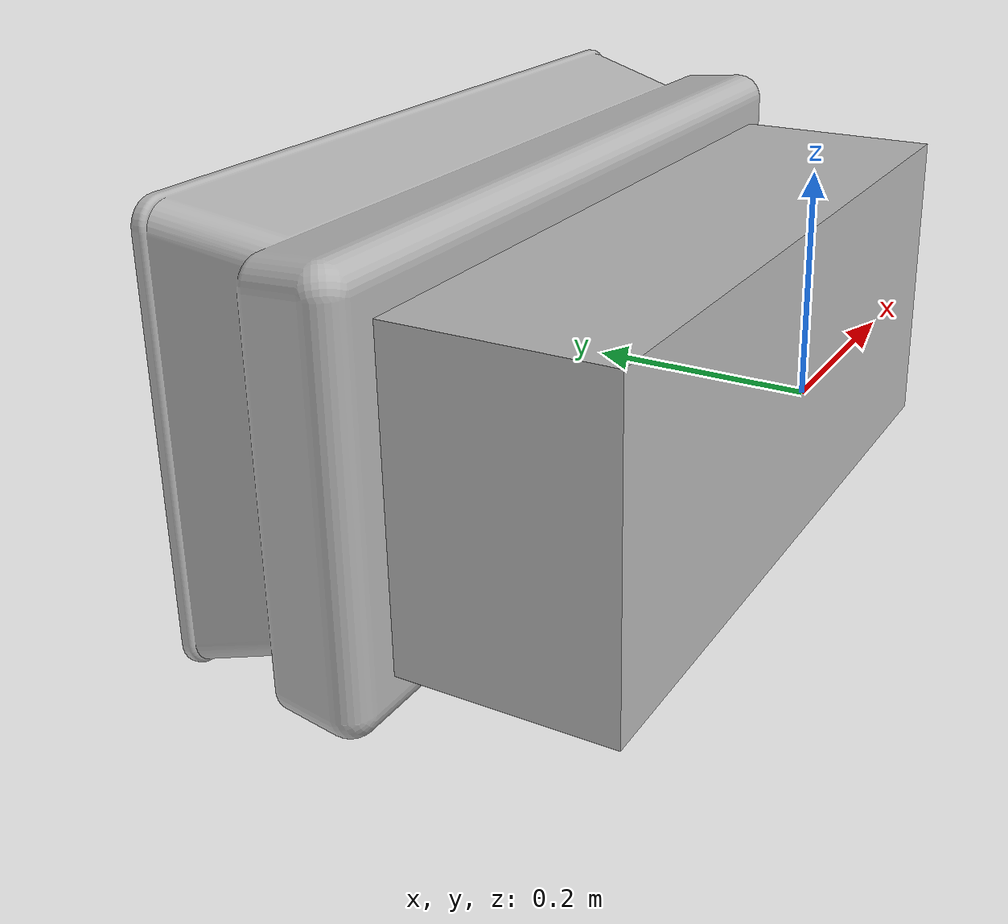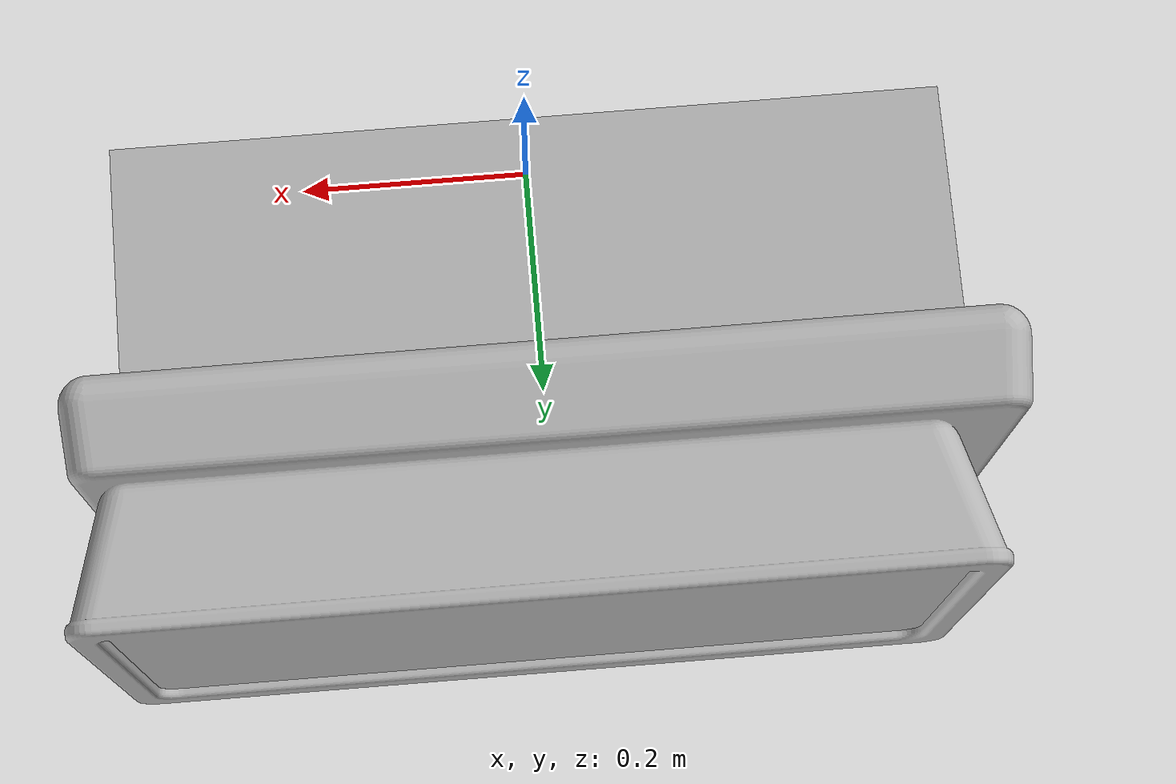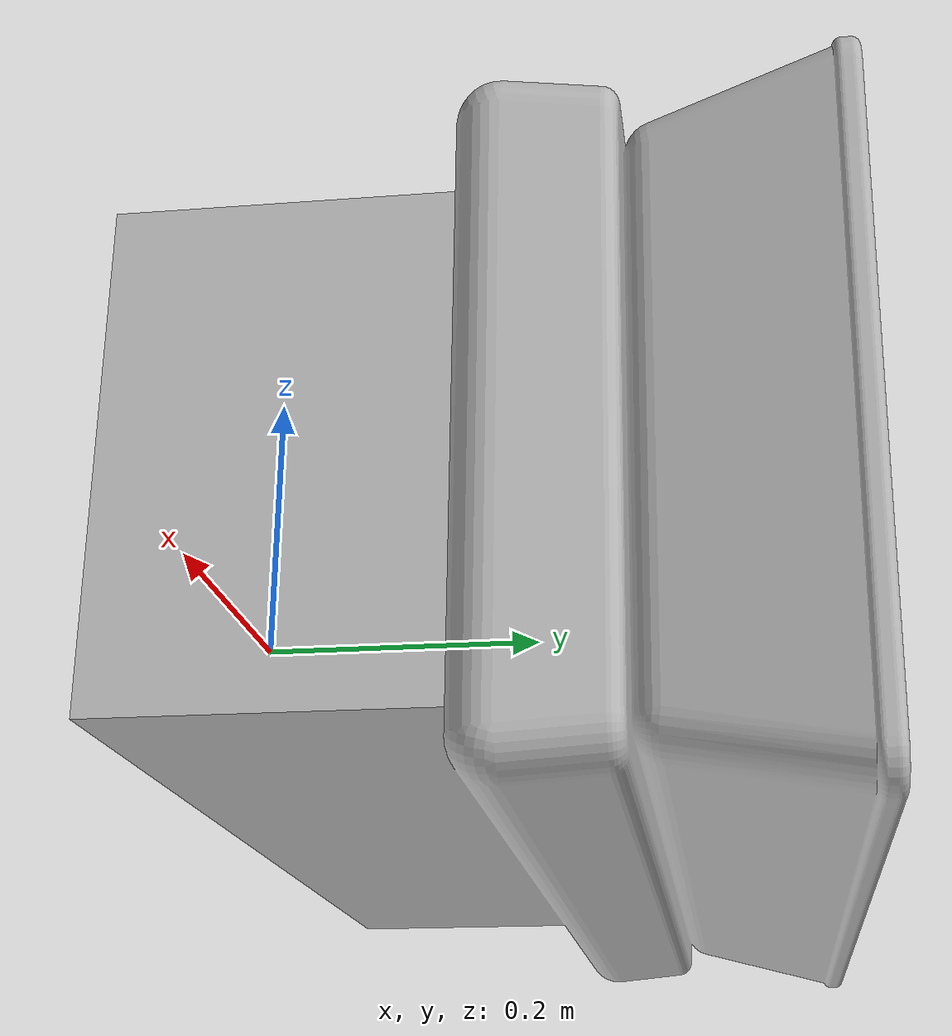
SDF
<?xml version="1.0"?>
<sdf version="1.6">
    <model name="trough">
	   <static>true</static>
      <link name="trough_link">

        <visual name="visual">
          <geometry>
            <mesh><uri>model://trough/meshes/truf_brick.obj</uri></mesh>
          </geometry>
        </visual>

        <collision name="collision">
          <pose>0 0.3 0 0 0 0</pose>
          <geometry>
          <box>
            <size>0.75 0.2 0.42</size>
          </box>
           </geometry>
        </collision>
      </link>

    </model>
</sdf>
